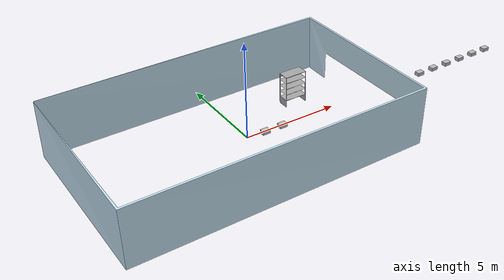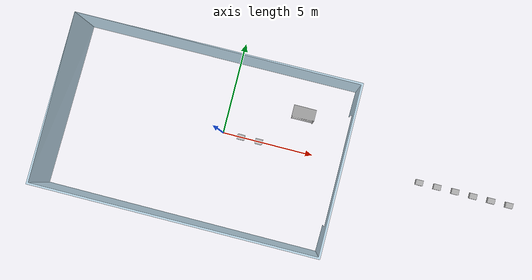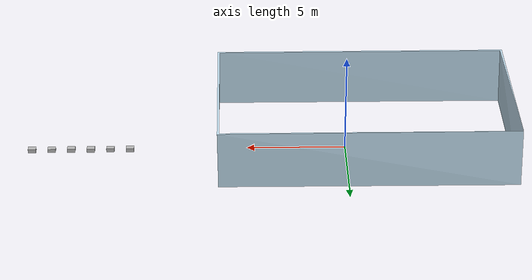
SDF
<sdf version="1.7">
 <world name="warehouse_world">
  <include>
   <uri>model://cardboard_box_blue_0</uri>
   <name>cardboard_box_blue_0</name>
   <pose>1 0 0 0 0 0</pose>
  </include>
  <include>
   <uri>model://cardboard_box_blue_1</uri>
   <name>cardboard_box_blue_1</name>
   <pose>2 0 0 0 0 0</pose>
  </include>
  <include>
   <uri>model://cardboard_box_blue_10</uri>
   <name>cardboard_box_blue_10</name>
   <pose>11 0 0 0 0 0</pose>
  </include>
  <include>
   <uri>model://cardboard_box_blue_11</uri>
   <name>cardboard_box_blue_11</name>
   <pose>12 0 0 0 0 0</pose>
  </include>
  <include>
   <uri>model://cardboard_box_blue_12</uri>
   <name>cardboard_box_blue_12</name>
   <pose>13 0 0 0 0 0</pose>
  </include>
  <include>
   <uri>model://cardboard_box_blue_13</uri>
   <name>cardboard_box_blue_13</name>
   <pose>14 0 0 0 0 0</pose>
  </include>
  <include>
   <uri>model://cardboard_box_blue_14</uri>
   <name>cardboard_box_blue_14</name>
   <pose>15 0 0 0 0 0</pose>
  </include>
  <include>
   <uri>model://cardboard_box_blue_15</uri>
   <name>cardboard_box_blue_15</name>
   <pose>16 0 0 0 0 0</pose>
  </include>
  <include><uri>model://StorageRack</uri><name>StorageRack</name><pose>4 2 0 0 0 0</pose></include>
  <include><uri>model://warehouse</uri><name>warehouse</name><pose>6.5 4 0 0 0 0</pose></include>
 </world>
</sdf>

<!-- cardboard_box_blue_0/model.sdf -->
<sdf version="1.6">
  <model name="cardboard_box_blue_0">
    <pose>0 0 0.1 0 0 0</pose>
    <link name="link">
      <inertial>
        <mass>0.8</mass>
        <inertia>
          <ixx>0.008666667</ixx>
          <ixy>0</ixy>
          <ixz>0</ixz>
          <iyy>0.013333333</iyy>
          <iyz>0</iyz>
          <izz>0.016666667</izz>
        </inertia>
      </inertial>
      <collision name="collision">
        <geometry>
          <box>
            <size>0.4 0.3 0.2</size>
          </box>
        </geometry>
        <surface>
          <friction>
            <ode>
              <mu>1.0</mu>
              <mu2>1.0</mu2>
            </ode>
          </friction>
          <contact>
            <ode>
              <kp>10000000.0</kp>
              <kd>1.0</kd>
              <min_depth>0.001</min_depth>
              <max_vel>0.1</max_vel>
            </ode>
          </contact>
        </surface>
      </collision>
      <visual name="visual">
        <pose>0 0 -0.1 0 0 0</pose>
        <geometry>
          <mesh>
            <uri>model://cardboard_box_blue_0/meshes/cardboard_box_blue_0.dae</uri>
            <scale>1.007455168 0.755591376 0.503727584</scale>
          </mesh>
        </geometry>
      </visual>
    </link>
  </model>
</sdf>

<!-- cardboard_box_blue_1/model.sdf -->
<sdf version="1.6">
  <model name="cardboard_box_blue_1">
    <pose>0 0 0.1 0 0 0</pose>
    <link name="link">
      <inertial>
        <mass>0.8</mass>
        <inertia>
          <ixx>0.008666667</ixx>
          <ixy>0</ixy>
          <ixz>0</ixz>
          <iyy>0.013333333</iyy>
          <iyz>0</iyz>
          <izz>0.016666667</izz>
        </inertia>
      </inertial>
      <collision name="collision">
        <geometry>
          <box>
            <size>0.4 0.3 0.2</size>
          </box>
        </geometry>
        <surface>
          <friction>
            <ode>
              <mu>1.0</mu>
              <mu2>1.0</mu2>
            </ode>
          </friction>
          <contact>
            <ode>
              <kp>10000000.0</kp>
              <kd>1.0</kd>
              <min_depth>0.001</min_depth>
              <max_vel>0.1</max_vel>
            </ode>
          </contact>
        </surface>
      </collision>
      <visual name="visual">
        <pose>0 0 -0.1 0 0 0</pose>
        <geometry>
          <mesh>
            <uri>model://cardboard_box_blue_1/meshes/cardboard_box_blue_1.dae</uri>
            <scale>1.007455168 0.755591376 0.503727584</scale>
          </mesh>
        </geometry>
      </visual>
    </link>
  </model>
</sdf>

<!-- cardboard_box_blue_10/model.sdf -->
<sdf version="1.6">
  <model name="cardboard_box_blue_10">
    <pose>0 0 0.1 0 0 0</pose>
    <link name="link">
      <inertial>
        <mass>0.8</mass>
        <inertia>
          <ixx>0.008666667</ixx>
          <ixy>0</ixy>
          <ixz>0</ixz>
          <iyy>0.013333333</iyy>
          <iyz>0</iyz>
          <izz>0.016666667</izz>
        </inertia>
      </inertial>
      <collision name="collision">
        <geometry>
          <box>
            <size>0.4 0.3 0.2</size>
          </box>
        </geometry>
        <surface>
          <friction>
            <ode>
              <mu>1.0</mu>
              <mu2>1.0</mu2>
            </ode>
          </friction>
          <contact>
            <ode>
              <kp>10000000.0</kp>
              <kd>1.0</kd>
              <min_depth>0.001</min_depth>
              <max_vel>0.1</max_vel>
            </ode>
          </contact>
        </surface>
      </collision>
      <visual name="visual">
        <pose>0 0 -0.1 0 0 0</pose>
        <geometry>
          <mesh>
            <uri>model://cardboard_box_blue_10/meshes/cardboard_box_blue_10.dae</uri>
            <scale>1.007455168 0.755591376 0.503727584</scale>
          </mesh>
        </geometry>
      </visual>
    </link>
  </model>
</sdf>

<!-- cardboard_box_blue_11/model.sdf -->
<sdf version="1.6">
  <model name="cardboard_box_blue_11">
    <pose>0 0 0.1 0 0 0</pose>
    <link name="link">
      <inertial>
        <mass>0.8</mass>
        <inertia>
          <ixx>0.008666667</ixx>
          <ixy>0</ixy>
          <ixz>0</ixz>
          <iyy>0.013333333</iyy>
          <iyz>0</iyz>
          <izz>0.016666667</izz>
        </inertia>
      </inertial>
      <collision name="collision">
        <geometry>
          <box>
            <size>0.4 0.3 0.2</size>
          </box>
        </geometry>
        <surface>
          <friction>
            <ode>
              <mu>1.0</mu>
              <mu2>1.0</mu2>
            </ode>
          </friction>
          <contact>
            <ode>
              <kp>10000000.0</kp>
              <kd>1.0</kd>
              <min_depth>0.001</min_depth>
              <max_vel>0.1</max_vel>
            </ode>
          </contact>
        </surface>
      </collision>
      <visual name="visual">
        <pose>0 0 -0.1 0 0 0</pose>
        <geometry>
          <mesh>
            <uri>model://cardboard_box_blue_11/meshes/cardboard_box_blue_11.dae</uri>
            <scale>1.007455168 0.755591376 0.503727584</scale>
          </mesh>
        </geometry>
      </visual>
    </link>
  </model>
</sdf>

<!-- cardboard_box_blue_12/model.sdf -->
<sdf version="1.6">
  <model name="cardboard_box_blue_12">
    <pose>0 0 0.1 0 0 0</pose>
    <link name="link">
      <inertial>
        <mass>0.8</mass>
        <inertia>
          <ixx>0.008666667</ixx>
          <ixy>0</ixy>
          <ixz>0</ixz>
          <iyy>0.013333333</iyy>
          <iyz>0</iyz>
          <izz>0.016666667</izz>
        </inertia>
      </inertial>
      <collision name="collision">
        <geometry>
          <box>
            <size>0.4 0.3 0.2</size>
          </box>
        </geometry>
        <surface>
          <friction>
            <ode>
              <mu>1.0</mu>
              <mu2>1.0</mu2>
            </ode>
          </friction>
          <contact>
            <ode>
              <kp>10000000.0</kp>
              <kd>1.0</kd>
              <min_depth>0.001</min_depth>
              <max_vel>0.1</max_vel>
            </ode>
          </contact>
        </surface>
      </collision>
      <visual name="visual">
        <pose>0 0 -0.1 0 0 0</pose>
        <geometry>
          <mesh>
            <uri>model://cardboard_box_blue_12/meshes/cardboard_box_blue_12.dae</uri>
            <scale>1.007455168 0.755591376 0.503727584</scale>
          </mesh>
        </geometry>
      </visual>
    </link>
  </model>
</sdf>

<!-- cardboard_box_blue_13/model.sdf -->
<sdf version="1.6">
  <model name="cardboard_box_blue_13">
    <pose>0 0 0.1 0 0 0</pose>
    <link name="link">
      <inertial>
        <mass>0.8</mass>
        <inertia>
          <ixx>0.008666667</ixx>
          <ixy>0</ixy>
          <ixz>0</ixz>
          <iyy>0.013333333</iyy>
          <iyz>0</iyz>
          <izz>0.016666667</izz>
        </inertia>
      </inertial>
      <collision name="collision">
        <geometry>
          <box>
            <size>0.4 0.3 0.2</size>
          </box>
        </geometry>
        <surface>
          <friction>
            <ode>
              <mu>1.0</mu>
              <mu2>1.0</mu2>
            </ode>
          </friction>
          <contact>
            <ode>
              <kp>10000000.0</kp>
              <kd>1.0</kd>
              <min_depth>0.001</min_depth>
              <max_vel>0.1</max_vel>
            </ode>
          </contact>
        </surface>
      </collision>
      <visual name="visual">
        <pose>0 0 -0.1 0 0 0</pose>
        <geometry>
          <mesh>
            <uri>model://cardboard_box_blue_13/meshes/cardboard_box_blue_13.dae</uri>
            <scale>1.007455168 0.755591376 0.503727584</scale>
          </mesh>
        </geometry>
      </visual>
    </link>
  </model>
</sdf>

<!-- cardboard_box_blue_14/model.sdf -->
<sdf version="1.6">
  <model name="cardboard_box_blue_14">
    <pose>0 0 0.1 0 0 0</pose>
    <link name="link">
      <inertial>
        <mass>0.8</mass>
        <inertia>
          <ixx>0.008666667</ixx>
          <ixy>0</ixy>
          <ixz>0</ixz>
          <iyy>0.013333333</iyy>
          <iyz>0</iyz>
          <izz>0.016666667</izz>
        </inertia>
      </inertial>
      <collision name="collision">
        <geometry>
          <box>
            <size>0.4 0.3 0.2</size>
          </box>
        </geometry>
        <surface>
          <friction>
            <ode>
              <mu>1.0</mu>
              <mu2>1.0</mu2>
            </ode>
          </friction>
          <contact>
            <ode>
              <kp>10000000.0</kp>
              <kd>1.0</kd>
              <min_depth>0.001</min_depth>
              <max_vel>0.1</max_vel>
            </ode>
          </contact>
        </surface>
      </collision>
      <visual name="visual">
        <pose>0 0 -0.1 0 0 0</pose>
        <geometry>
          <mesh>
            <uri>model://cardboard_box_blue_14/meshes/cardboard_box_blue_14.dae</uri>
            <scale>1.007455168 0.755591376 0.503727584</scale>
          </mesh>
        </geometry>
      </visual>
    </link>
  </model>
</sdf>

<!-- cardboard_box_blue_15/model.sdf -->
<sdf version="1.6">
  <model name="cardboard_box_blue_15">
    <pose>0 0 0.1 0 0 0</pose>
    <link name="link">
      <inertial>
        <mass>0.8</mass>
        <inertia>
          <ixx>0.008666667</ixx>
          <ixy>0</ixy>
          <ixz>0</ixz>
          <iyy>0.013333333</iyy>
          <iyz>0</iyz>
          <izz>0.016666667</izz>
        </inertia>
      </inertial>
      <collision name="collision">
        <geometry>
          <box>
            <size>0.4 0.3 0.2</size>
          </box>
        </geometry>
        <surface>
          <friction>
            <ode>
              <mu>1.0</mu>
              <mu2>1.0</mu2>
            </ode>
          </friction>
          <contact>
            <ode>
              <kp>10000000.0</kp>
              <kd>1.0</kd>
              <min_depth>0.001</min_depth>
              <max_vel>0.1</max_vel>
            </ode>
          </contact>
        </surface>
      </collision>
      <visual name="visual">
        <pose>0 0 -0.1 0 0 0</pose>
        <geometry>
          <mesh>
            <uri>model://cardboard_box_blue_15/meshes/cardboard_box_blue_15.dae</uri>
            <scale>1.007455168 0.755591376 0.503727584</scale>
          </mesh>
        </geometry>
      </visual>
    </link>
  </model>
</sdf>

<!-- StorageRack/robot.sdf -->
<!-- Generated using onshape-to-robot -->
<!-- Onshape https://cad.onshape.com/documents/e59a5119f90fbd6e9f1333a0/w/d0af061ee81795a88f344743/e/58bd54593187122834701847 -->
<sdf version="1.7">
  <model name="StorageRack">
    <!-- Link part_10 -->
    <link name="part_11">
      <inertial>
        <pose>-5.14099e-17 -1.40256e-16 0.656909 0 0 0</pose>
        <mass>2388.38</mass>
        <inertia>
          <ixx>627.823</ixx>
          <ixy>1.03728e-14</ixy>
          <ixz>-7.82377e-14</ixz>
          <iyy>868.528</iyy>
          <iyz>-1.52331e-13</iyz>
          <izz>392.919</izz>
        </inertia>
      </inertial>
      <pose>0 0 0 0 -0 0</pose>
      <!-- Part part_10 -->
      <visual name="part_11_visual_mesh_1">
        <pose relative_to="part_11">-1.11022e-16 -1.11022e-16 0 0 -0 0</pose>
        <geometry>
          <mesh>
            <uri>model://StorageRack/assets/part_11.stl</uri>
          </mesh>
        </geometry>
        <material>
          <ambient>0.647059 0.647059 0.647059 1</ambient>
          <diffuse>0.647059 0.647059 0.647059 1</diffuse>
          <specular>0.1 0.1 0.1 1</specular>
          <emissive>0 0 0 0</emissive>
        </material>
      </visual>
      <collision name="part_11_collision_mesh_2">
        <pose relative_to="part_11">-1.11022e-16 -1.11022e-16 0 0 -0 0</pose>
        <geometry>
          <mesh>
            <uri>model://StorageRack/assets/part_11.stl</uri>
          </mesh>
        </geometry>
      </collision>
    </link>
  </model>
</sdf>

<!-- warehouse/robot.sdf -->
<!-- Generated using onshape-to-robot -->
<!-- Onshape https://cad.onshape.com/documents/e59a5119f90fbd6e9f1333a0/w/d0af061ee81795a88f344743/e/f501fa2de0bf2f30bcb1f673 -->
<sdf version="1.7">
  <model name="warehouse">
    <!-- Link part_20 -->
    <link name="part_20">
      <inertial>
        <pose>-8.00112 -4.5 1.55045 0 0 0</pose>
        <mass>262248</mass>
        <inertia>
          <ixx>4.30425e+06</ixx>
          <ixy>2.31943e-08</ixy>
          <ixz>-105193</ixz>
          <iyy>8.20251e+06</iyy>
          <iyz>5.40949e-10</iyz>
          <izz>1.21147e+07</izz>
        </inertia>
      </inertial>
      <pose>0 0 0 0 -0 0</pose>
      <!-- Part part_20 -->
      <visual name="part_20_visual_mesh_1">
        <pose relative_to="part_20">-7.5 -4.5 0 0 -0 0</pose>
        <geometry>
          <mesh>
            <uri>model://warehouse/assets/part_20.stl</uri>
          </mesh>
        </geometry>
        <material>
          <ambient>0.768627 0.886275 0.952941 1</ambient>
          <diffuse>0.768627 0.886275 0.952941 1</diffuse>
          <specular>0.1 0.1 0.1 1</specular>
          <emissive>0 0 0 0</emissive>
        </material>
      </visual>
      <collision name="part_20_collision_mesh_2">
        <pose relative_to="part_20">-7.5 -4.5 0 0 -0 0</pose>
        <geometry>
          <mesh>
            <uri>model://warehouse/assets/part_20.stl</uri>
          </mesh>
        </geometry>
      </collision>
    </link>
  </model>
</sdf>
